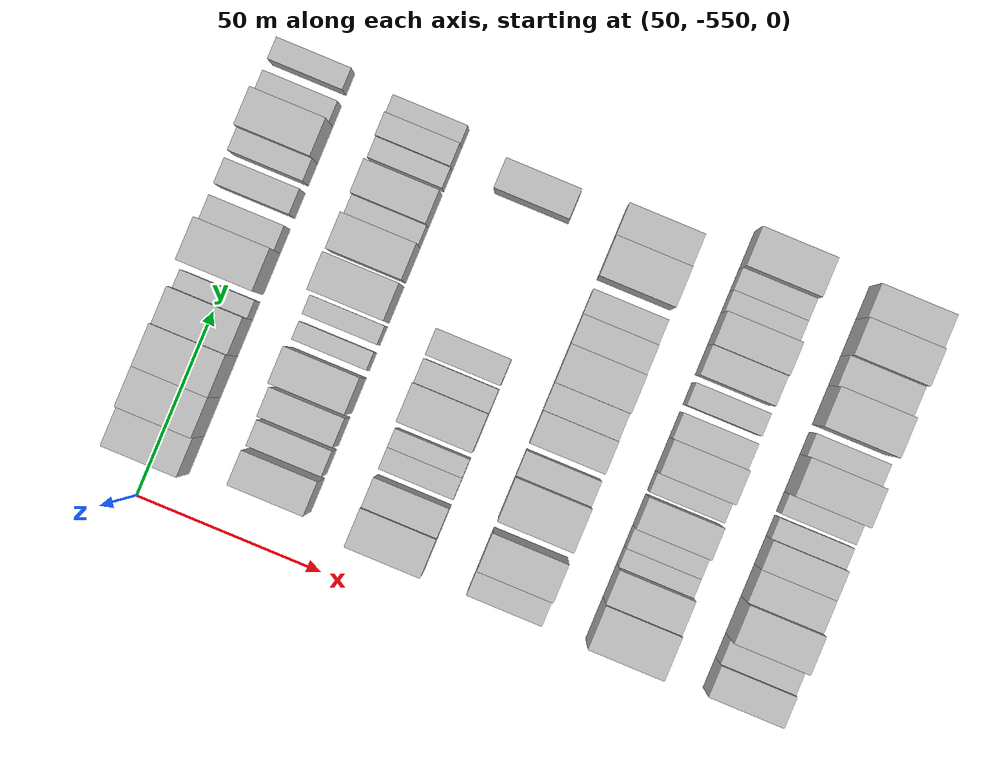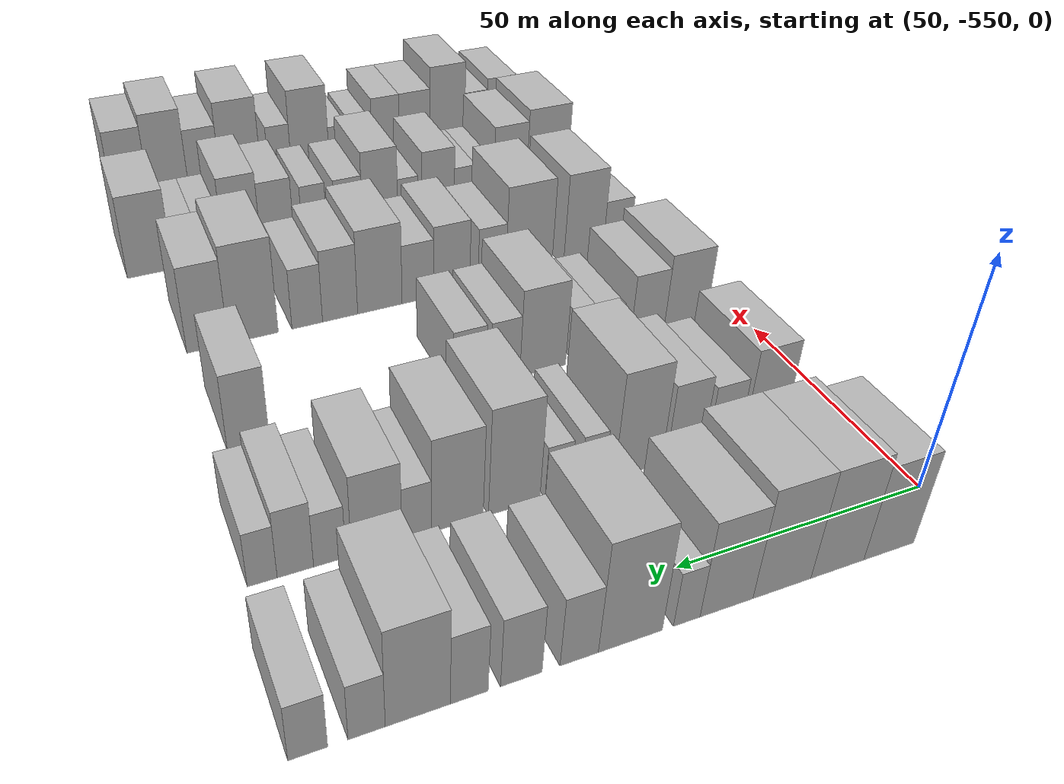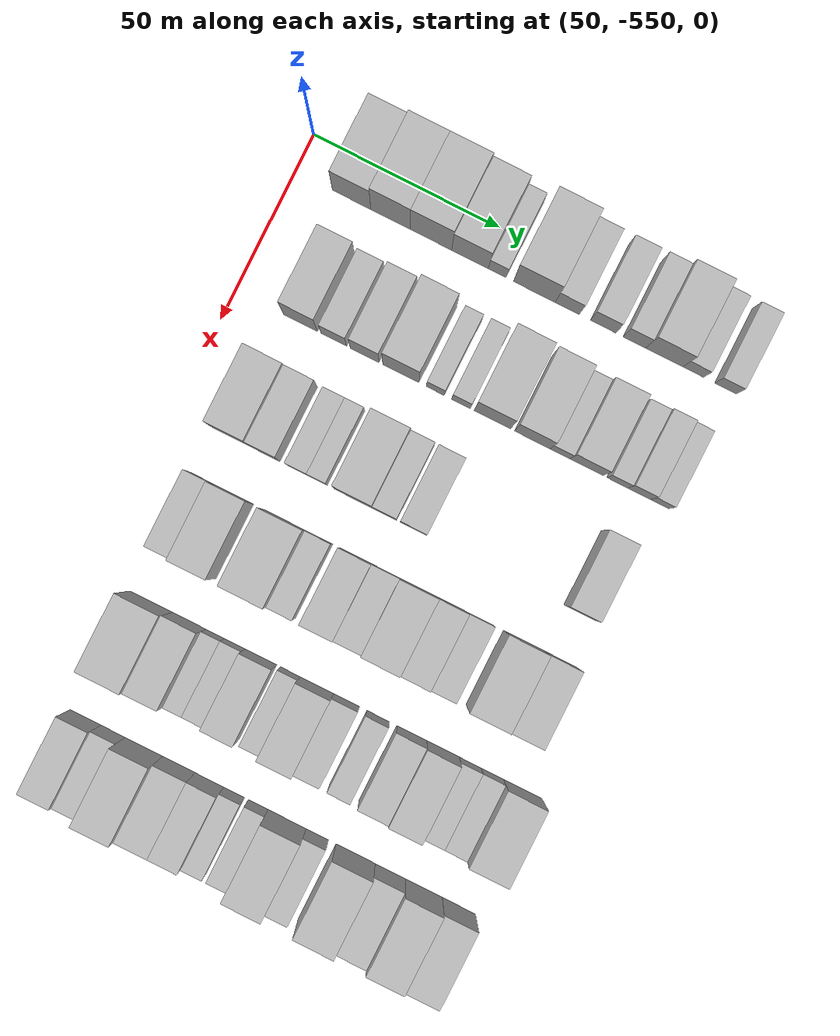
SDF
<sdf version="1.6">
 <world name="default">
  <model name="building_1">
   <static>1</static>
   <pose>50.0000 -534.8459 0 0.000000 0.000000 0.000000</pose>
   <link name="link">
    <pose>0 0 10.50 0 0 0</pose>
    <collision name="collision"><geometry><box><size>20.0000 10.3082 21.0000</size></box></geometry></collision>
    <visual name="visual">
     <cast_shadows>0</cast_shadows>
     <geometry><box><size>20.0000 10.3082 21.0000</size></box></geometry>
     <material>
      <script>
       <uri>model://HANNAS_wall/materials/scripts</uri>
       <uri>model://HANNAS_wall/materials/textures</uri>
       <name>vrc/HANNAS_wall</name>
      </script>
     </material>
    </visual>
   </link>
  </model>
  <model name="building_2">
   <static>1</static>
   <pose>50.0000 -524.3965 0 0.000000 0.000000 0.000000</pose>
   <link name="link">
    <pose>0 0 12.00 0 0 0</pose>
    <collision name="collision"><geometry><box><size>20.0000 10.5908 24.0000</size></box></geometry></collision>
    <visual name="visual">
     <cast_shadows>0</cast_shadows>
     <geometry><box><size>20.0000 10.5908 24.0000</size></box></geometry>
     <material>
      <script>
       <uri>model://HANNAS_wall/materials/scripts</uri>
       <uri>model://HANNAS_wall/materials/textures</uri>
       <name>vrc/HANNAS_wall</name>
      </script>
     </material>
    </visual>
   </link>
  </model>
  <model name="building_3">
   <static>1</static>
   <pose>50.0000 -513.5059 0 0.000000 0.000000 0.000000</pose>
   <link name="link">
    <pose>0 0 12.00 0 0 0</pose>
    <collision name="collision"><geometry><box><size>20.0000 11.1904 24.0000</size></box></geometry></collision>
    <visual name="visual">
     <cast_shadows>0</cast_shadows>
     <geometry><box><size>20.0000 11.1904 24.0000</size></box></geometry>
     <material>
      <script>
       <uri>model://HANNAS_wall/materials/scripts</uri>
       <uri>model://HANNAS_wall/materials/textures</uri>
       <name>vrc/HANNAS_wall</name>
      </script>
     </material>
    </visual>
   </link>
  </model>
  <model name="building_4">
   <static>1</static>
   <pose>50.0000 -502.9816 0 0.000000 0.000000 0.000000</pose>
   <link name="link">
    <pose>0 0 10.50 0 0 0</pose>
    <collision name="collision"><geometry><box><size>20.0000 9.8581 21.0000</size></box></geometry></collision>
    <visual name="visual">
     <cast_shadows>0</cast_shadows>
     <geometry><box><size>20.0000 9.8581 21.0000</size></box></geometry>
     <material>
      <script>
       <uri>model://HANNAS_wall/materials/scripts</uri>
       <uri>model://HANNAS_wall/materials/textures</uri>
       <name>vrc/HANNAS_wall</name>
      </script>
     </material>
    </visual>
   </link>
  </model>
  <model name="building_5">
   <static>1</static>
   <pose>50.0000 -495.6456 0 0.000000 0.000000 0.000000</pose>
   <link name="link">
    <pose>0 0 6.00 0 0 0</pose>
    <collision name="collision"><geometry><box><size>20.0000 4.8140 12.0000</size></box></geometry></collision>
    <visual name="visual">
     <cast_shadows>0</cast_shadows>
     <geometry><box><size>20.0000 4.8140 12.0000</size></box></geometry>
     <material>
      <script>
       <uri>model://HANNAS_wall/materials/scripts</uri>
       <uri>model://HANNAS_wall/materials/textures</uri>
       <name>vrc/HANNAS_wall</name>
      </script>
     </material>
    </visual>
   </link>
  </model>
  <model name="building_6">
   <static>1</static>
   <pose>50.0000 -485.6218 0 0.000000 0.000000 0.000000</pose>
   <link name="link">
    <pose>0 0 12.00 0 0 0</pose>
    <collision name="collision"><geometry><box><size>20.0000 11.2336 24.0000</size></box></geometry></collision>
    <visual name="visual">
     <cast_shadows>0</cast_shadows>
     <geometry><box><size>20.0000 11.2336 24.0000</size></box></geometry>
     <material>
      <script>
       <uri>model://HANNAS_wall/materials/scripts</uri>
       <uri>model://HANNAS_wall/materials/textures</uri>
       <name>vrc/HANNAS_wall</name>
      </script>
     </material>
    </visual>
   </link>
  </model>
  <model name="building_7">
   <static>1</static>
   <pose>50.0000 -476.7481 0 0.000000 0.000000 0.000000</pose>
   <link name="link">
    <pose>0 0 7.50 0 0 0</pose>
    <collision name="collision"><geometry><box><size>20.0000 6.5139 15.0000</size></box></geometry></collision>
    <visual name="visual">
     <cast_shadows>0</cast_shadows>
     <geometry><box><size>20.0000 6.5139 15.0000</size></box></geometry>
     <material>
      <script>
       <uri>model://HANNAS_wall/materials/scripts</uri>
       <uri>model://HANNAS_wall/materials/textures</uri>
       <name>vrc/HANNAS_wall</name>
      </script>
     </material>
    </visual>
   </link>
  </model>
  <model name="building_8">
   <static>1</static>
   <pose>50.0000 -467.0792 0 0.000000 0.000000 0.000000</pose>
   <link name="link">
    <pose>0 0 7.50 0 0 0</pose>
    <collision name="collision"><geometry><box><size>20.0000 6.8238 15.0000</size></box></geometry></collision>
    <visual name="visual">
     <cast_shadows>0</cast_shadows>
     <geometry><box><size>20.0000 6.8238 15.0000</size></box></geometry>
     <material>
      <script>
       <uri>model://HANNAS_wall/materials/scripts</uri>
       <uri>model://HANNAS_wall/materials/textures</uri>
       <name>vrc/HANNAS_wall</name>
      </script>
     </material>
    </visual>
   </link>
  </model>
  <model name="building_9">
   <static>1</static>
   <pose>50.0000 -458.6528 0 0.000000 0.000000 0.000000</pose>
   <link name="link">
    <pose>0 0 7.50 0 0 0</pose>
    <collision name="collision"><geometry><box><size>20.0000 6.0291 15.0000</size></box></geometry></collision>
    <visual name="visual">
     <cast_shadows>0</cast_shadows>
     <geometry><box><size>20.0000 6.0291 15.0000</size></box></geometry>
     <material>
      <script>
       <uri>model://HANNAS_wall/materials/scripts</uri>
       <uri>model://HANNAS_wall/materials/textures</uri>
       <name>vrc/HANNAS_wall</name>
      </script>
     </material>
    </visual>
   </link>
  </model>
  <model name="building_10">
   <static>1</static>
   <pose>50.0000 -450.6121 0 0.000000 0.000000 0.000000</pose>
   <link name="link">
    <pose>0 0 10.50 0 0 0</pose>
    <collision name="collision"><geometry><box><size>20.0000 10.0524 21.0000</size></box></geometry></collision>
    <visual name="visual">
     <cast_shadows>0</cast_shadows>
     <geometry><box><size>20.0000 10.0524 21.0000</size></box></geometry>
     <material>
      <script>
       <uri>model://HANNAS_wall/materials/scripts</uri>
       <uri>model://HANNAS_wall/materials/textures</uri>
       <name>vrc/HANNAS_wall</name>
      </script>
     </material>
    </visual>
   </link>
  </model>
  <model name="building_11">
   <static>1</static>
   <pose>50.0000 -442.7862 0 0.000000 0.000000 0.000000</pose>
   <link name="link">
    <pose>0 0 6.00 0 0 0</pose>
    <collision name="collision"><geometry><box><size>20.0000 5.5993 12.0000</size></box></geometry></collision>
    <visual name="visual">
     <cast_shadows>0</cast_shadows>
     <geometry><box><size>20.0000 5.5993 12.0000</size></box></geometry>
     <material>
      <script>
       <uri>model://HANNAS_wall/materials/scripts</uri>
       <uri>model://HANNAS_wall/materials/textures</uri>
       <name>vrc/HANNAS_wall</name>
      </script>
     </material>
    </visual>
   </link>
  </model>
  <model name="building_12">
   <static>1</static>
   <pose>50.0000 -434.0810 0 0.000000 0.000000 0.000000</pose>
   <link name="link">
    <pose>0 0 6.00 0 0 0</pose>
    <collision name="collision"><geometry><box><size>20.0000 5.8111 12.0000</size></box></geometry></collision>
    <visual name="visual">
     <cast_shadows>0</cast_shadows>
     <geometry><box><size>20.0000 5.8111 12.0000</size></box></geometry>
     <material>
      <script>
       <uri>model://HANNAS_wall/materials/scripts</uri>
       <uri>model://HANNAS_wall/materials/textures</uri>
       <name>vrc/HANNAS_wall</name>
      </script>
     </material>
    </visual>
   </link>
  </model>
  <model name="building_121">
   <static>1</static>
   <pose>82.0000 -532.4402 0 0.000000 0.000000 0.000000</pose>
   <link name="link">
    <pose>0 0 10.50 0 0 0</pose>
    <collision name="collision"><geometry><box><size>20.0000 9.1197 21.0000</size></box></geometry></collision>
    <visual name="visual">
     <cast_shadows>0</cast_shadows>
     <geometry><box><size>20.0000 9.1197 21.0000</size></box></geometry>
     <material>
      <script>
       <uri>model://HANNAS_wall/materials/scripts</uri>
       <uri>model://HANNAS_wall/materials/textures</uri>
       <name>vrc/HANNAS_wall</name>
      </script>
     </material>
    </visual>
   </link>
  </model>
  <model name="building_122">
   <static>1</static>
   <pose>82.0000 -523.4505 0 0.000000 0.000000 0.000000</pose>
   <link name="link">
    <pose>0 0 7.50 0 0 0</pose>
    <collision name="collision"><geometry><box><size>20.0000 6.8597 15.0000</size></box></geometry></collision>
    <visual name="visual">
     <cast_shadows>0</cast_shadows>
     <geometry><box><size>20.0000 6.8597 15.0000</size></box></geometry>
     <material>
      <script>
       <uri>model://HANNAS_wall/materials/scripts</uri>
       <uri>model://HANNAS_wall/materials/textures</uri>
       <name>vrc/HANNAS_wall</name>
      </script>
     </material>
    </visual>
   </link>
  </model>
  <model name="building_123">
   <static>1</static>
   <pose>82.0000 -515.1497 0 0.000000 0.000000 0.000000</pose>
   <link name="link">
    <pose>0 0 9.00 0 0 0</pose>
    <collision name="collision"><geometry><box><size>20.0000 7.7418 18.0000</size></box></geometry></collision>
    <visual name="visual">
     <cast_shadows>0</cast_shadows>
     <geometry><box><size>20.0000 7.7418 18.0000</size></box></geometry>
     <material>
      <script>
       <uri>model://HANNAS_wall/materials/scripts</uri>
       <uri>model://HANNAS_wall/materials/textures</uri>
       <name>vrc/HANNAS_wall</name>
      </script>
     </material>
    </visual>
   </link>
  </model>
  <model name="building_124">
   <static>1</static>
   <pose>82.0000 -505.4174 0 0.000000 0.000000 0.000000</pose>
   <link name="link">
    <pose>0 0 12.00 0 0 0</pose>
    <collision name="collision"><geometry><box><size>20.0000 9.7228 24.0000</size></box></geometry></collision>
    <visual name="visual">
     <cast_shadows>0</cast_shadows>
     <geometry><box><size>20.0000 9.7228 24.0000</size></box></geometry>
     <material>
      <script>
       <uri>model://HANNAS_wall/materials/scripts</uri>
       <uri>model://HANNAS_wall/materials/textures</uri>
       <name>vrc/HANNAS_wall</name>
      </script>
     </material>
    </visual>
   </link>
  </model>
  <model name="building_125">
   <static>1</static>
   <pose>82.0000 -496.1495 0 0.000000 0.000000 0.000000</pose>
   <link name="link">
    <pose>0 0 6.00 0 0 0</pose>
    <collision name="collision"><geometry><box><size>20.0000 4.8129 12.0000</size></box></geometry></collision>
    <visual name="visual">
     <cast_shadows>0</cast_shadows>
     <geometry><box><size>20.0000 4.8129 12.0000</size></box></geometry>
     <material>
      <script>
       <uri>model://HANNAS_wall/materials/scripts</uri>
       <uri>model://HANNAS_wall/materials/textures</uri>
       <name>vrc/HANNAS_wall</name>
      </script>
     </material>
    </visual>
   </link>
  </model>
  <model name="building_126">
   <static>1</static>
   <pose>82.0000 -489.2271 0 0.000000 0.000000 0.000000</pose>
   <link name="link">
    <pose>0 0 6.00 0 0 0</pose>
    <collision name="collision"><geometry><box><size>20.0000 5.0319 12.0000</size></box></geometry></collision>
    <visual name="visual">
     <cast_shadows>0</cast_shadows>
     <geometry><box><size>20.0000 5.0319 12.0000</size></box></geometry>
     <material>
      <script>
       <uri>model://HANNAS_wall/materials/scripts</uri>
       <uri>model://HANNAS_wall/materials/textures</uri>
       <name>vrc/HANNAS_wall</name>
      </script>
     </material>
    </visual>
   </link>
  </model>
  <model name="building_127">
   <static>1</static>
   <pose>82.0000 -480.7762 0 0.000000 0.000000 0.000000</pose>
   <link name="link">
    <pose>0 0 12.00 0 0 0</pose>
    <collision name="collision"><geometry><box><size>20.0000 9.8700 24.0000</size></box></geometry></collision>
    <visual name="visual">
     <cast_shadows>0</cast_shadows>
     <geometry><box><size>20.0000 9.8700 24.0000</size></box></geometry>
     <material>
      <script>
       <uri>model://HANNAS_wall/materials/scripts</uri>
       <uri>model://HANNAS_wall/materials/textures</uri>
       <name>vrc/HANNAS_wall</name>
      </script>
     </material>
    </visual>
   </link>
  </model>
  <model name="building_128">
   <static>1</static>
   <pose>82.0000 -470.0373 0 0.000000 0.000000 0.000000</pose>
   <link name="link">
    <pose>0 0 10.50 0 0 0</pose>
    <collision name="collision"><geometry><box><size>20.0000 9.6077 21.0000</size></box></geometry></collision>
    <visual name="visual">
     <cast_shadows>0</cast_shadows>
     <geometry><box><size>20.0000 9.6077 21.0000</size></box></geometry>
     <material>
      <script>
       <uri>model://HANNAS_wall/materials/scripts</uri>
       <uri>model://HANNAS_wall/materials/textures</uri>
       <name>vrc/HANNAS_wall</name>
      </script>
     </material>
    </visual>
   </link>
  </model>
  <model name="building_129">
   <static>1</static>
   <pose>82.0000 -462.5601 0 0.000000 0.000000 0.000000</pose>
   <link name="link">
    <pose>0 0 6.00 0 0 0</pose>
    <collision name="collision"><geometry><box><size>20.0000 5.3466 12.0000</size></box></geometry></collision>
    <visual name="visual">
     <cast_shadows>0</cast_shadows>
     <geometry><box><size>20.0000 5.3466 12.0000</size></box></geometry>
     <material>
      <script>
       <uri>model://HANNAS_wall/materials/scripts</uri>
       <uri>model://HANNAS_wall/materials/textures</uri>
       <name>vrc/HANNAS_wall</name>
      </script>
     </material>
    </visual>
   </link>
  </model>
  <model name="building_130">
   <static>1</static>
   <pose>82.0000 -455.4242 0 0.000000 0.000000 0.000000</pose>
   <link name="link">
    <pose>0 0 9.00 0 0 0</pose>
    <collision name="collision"><geometry><box><size>20.0000 8.9253 18.0000</size></box></geometry></collision>
    <visual name="visual">
     <cast_shadows>0</cast_shadows>
     <geometry><box><size>20.0000 8.9253 18.0000</size></box></geometry>
     <material>
      <script>
       <uri>model://HANNAS_wall/materials/scripts</uri>
       <uri>model://HANNAS_wall/materials/textures</uri>
       <name>vrc/HANNAS_wall</name>
      </script>
     </material>
    </visual>
   </link>
  </model>
  <model name="building_131">
   <static>1</static>
   <pose>82.0000 -447.1880 0 0.000000 0.000000 0.000000</pose>
   <link name="link">
    <pose>0 0 6.00 0 0 0</pose>
    <collision name="collision"><geometry><box><size>20.0000 5.5470 12.0000</size></box></geometry></collision>
    <visual name="visual">
     <cast_shadows>0</cast_shadows>
     <geometry><box><size>20.0000 5.5470 12.0000</size></box></geometry>
     <material>
      <script>
       <uri>model://HANNAS_wall/materials/scripts</uri>
       <uri>model://HANNAS_wall/materials/textures</uri>
       <name>vrc/HANNAS_wall</name>
      </script>
     </material>
    </visual>
   </link>
  </model>
  <model name="building_132">
   <static>1</static>
   <pose>82.0000 -441.3281 0 0.000000 0.000000 0.000000</pose>
   <link name="link">
    <pose>0 0 7.50 0 0 0</pose>
    <collision name="collision"><geometry><box><size>20.0000 6.1728 15.0000</size></box></geometry></collision>
    <visual name="visual">
     <cast_shadows>0</cast_shadows>
     <geometry><box><size>20.0000 6.1728 15.0000</size></box></geometry>
     <material>
      <script>
       <uri>model://HANNAS_wall/materials/scripts</uri>
       <uri>model://HANNAS_wall/materials/textures</uri>
       <name>vrc/HANNAS_wall</name>
      </script>
     </material>
    </visual>
   </link>
  </model>
  <model name="building_133">
   <static>1</static>
   <pose>82.0000 -435.7480 0 0.000000 0.000000 0.000000</pose>
   <link name="link">
    <pose>0 0 6.00 0 0 0</pose>
    <collision name="collision"><geometry><box><size>20.0000 4.9873 12.0000</size></box></geometry></collision>
    <visual name="visual">
     <cast_shadows>0</cast_shadows>
     <geometry><box><size>20.0000 4.9873 12.0000</size></box></geometry>
     <material>
      <script>
       <uri>model://HANNAS_wall/materials/scripts</uri>
       <uri>model://HANNAS_wall/materials/textures</uri>
       <name>vrc/HANNAS_wall</name>
      </script>
     </material>
    </visual>
   </link>
  </model>
  <model name="building_238">
   <static>1</static>
   <pose>114.0000 -534.8789 0 0.000000 0.000000 0.000000</pose>
   <link name="link">
    <pose>0 0 10.50 0 0 0</pose>
    <collision name="collision"><geometry><box><size>20.0000 10.2421 21.0000</size></box></geometry></collision>
    <visual name="visual">
     <cast_shadows>0</cast_shadows>
     <geometry><box><size>20.0000 10.2421 21.0000</size></box></geometry>
     <material>
      <script>
       <uri>model://HANNAS_wall/materials/scripts</uri>
       <uri>model://HANNAS_wall/materials/textures</uri>
       <name>vrc/HANNAS_wall</name>
      </script>
     </material>
    </visual>
   </link>
  </model>
  <model name="building_239">
   <static>1</static>
   <pose>114.0000 -525.7972 0 0.000000 0.000000 0.000000</pose>
   <link name="link">
    <pose>0 0 9.00 0 0 0</pose>
    <collision name="collision"><geometry><box><size>20.0000 7.9213 18.0000</size></box></geometry></collision>
    <visual name="visual">
     <cast_shadows>0</cast_shadows>
     <geometry><box><size>20.0000 7.9213 18.0000</size></box></geometry>
     <material>
      <script>
       <uri>model://HANNAS_wall/materials/scripts</uri>
       <uri>model://HANNAS_wall/materials/textures</uri>
       <name>vrc/HANNAS_wall</name>
      </script>
     </material>
    </visual>
   </link>
  </model>
  <model name="building_240">
   <static>1</static>
   <pose>114.0000 -516.9515 0 0.000000 0.000000 0.000000</pose>
   <link name="link">
    <pose>0 0 6.00 0 0 0</pose>
    <collision name="collision"><geometry><box><size>20.0000 5.7701 12.0000</size></box></geometry></collision>
    <visual name="visual">
     <cast_shadows>0</cast_shadows>
     <geometry><box><size>20.0000 5.7701 12.0000</size></box></geometry>
     <material>
      <script>
       <uri>model://HANNAS_wall/materials/scripts</uri>
       <uri>model://HANNAS_wall/materials/textures</uri>
       <name>vrc/HANNAS_wall</name>
      </script>
     </material>
    </visual>
   </link>
  </model>
  <model name="building_241">
   <static>1</static>
   <pose>114.0000 -511.5694 0 0.000000 0.000000 0.000000</pose>
   <link name="link">
    <pose>0 0 6.00 0 0 0</pose>
    <collision name="collision"><geometry><box><size>20.0000 4.9941 12.0000</size></box></geometry></collision>
    <visual name="visual">
     <cast_shadows>0</cast_shadows>
     <geometry><box><size>20.0000 4.9941 12.0000</size></box></geometry>
     <material>
      <script>
       <uri>model://HANNAS_wall/materials/scripts</uri>
       <uri>model://HANNAS_wall/materials/textures</uri>
       <name>vrc/HANNAS_wall</name>
      </script>
     </material>
    </visual>
   </link>
  </model>
  <model name="building_242">
   <static>1</static>
   <pose>114.0000 -501.9429 0 0.000000 0.000000 0.000000</pose>
   <link name="link">
    <pose>0 0 10.50 0 0 0</pose>
    <collision name="collision"><geometry><box><size>20.0000 10.2590 21.0000</size></box></geometry></collision>
    <visual name="visual">
     <cast_shadows>0</cast_shadows>
     <geometry><box><size>20.0000 10.2590 21.0000</size></box></geometry>
     <material>
      <script>
       <uri>model://HANNAS_wall/materials/scripts</uri>
       <uri>model://HANNAS_wall/materials/textures</uri>
       <name>vrc/HANNAS_wall</name>
      </script>
     </material>
    </visual>
   </link>
  </model>
  <model name="building_243">
   <static>1</static>
   <pose>114.0000 -493.6064 0 0.000000 0.000000 0.000000</pose>
   <link name="link">
    <pose>0 0 7.50 0 0 0</pose>
    <collision name="collision"><geometry><box><size>20.0000 6.4140 15.0000</size></box></geometry></collision>
    <visual name="visual">
     <cast_shadows>0</cast_shadows>
     <geometry><box><size>20.0000 6.4140 15.0000</size></box></geometry>
     <material>
      <script>
       <uri>model://HANNAS_wall/materials/scripts</uri>
       <uri>model://HANNAS_wall/materials/textures</uri>
       <name>vrc/HANNAS_wall</name>
      </script>
     </material>
    </visual>
   </link>
  </model>
  <model name="building_244">
   <static>1</static>
   <pose>114.0000 -485.8817 0 0.000000 0.000000 0.000000</pose>
   <link name="link">
    <pose>0 0 7.50 0 0 0</pose>
    <collision name="collision"><geometry><box><size>20.0000 7.0355 15.0000</size></box></geometry></collision>
    <visual name="visual">
     <cast_shadows>0</cast_shadows>
     <geometry><box><size>20.0000 7.0355 15.0000</size></box></geometry>
     <material>
      <script>
       <uri>model://HANNAS_wall/materials/scripts</uri>
       <uri>model://HANNAS_wall/materials/textures</uri>
       <name>vrc/HANNAS_wall</name>
      </script>
     </material>
    </visual>
   </link>
  </model>
  <model name="building_245">
   <static>1</static>
   <pose>114.0000 -441.3834 0 0.000000 0.000000 0.000000</pose>
   <link name="link">
    <pose>0 0 9.00 0 0 0</pose>
    <collision name="collision"><geometry><box><size>20.0000 7.9870 18.0000</size></box></geometry></collision>
    <visual name="visual">
     <cast_shadows>0</cast_shadows>
     <geometry><box><size>20.0000 7.9870 18.0000</size></box></geometry>
     <material>
      <script>
       <uri>model://HANNAS_wall/materials/scripts</uri>
       <uri>model://HANNAS_wall/materials/textures</uri>
       <name>vrc/HANNAS_wall</name>
      </script>
     </material>
    </visual>
   </link>
  </model>
  <model name="building_356">
   <static>1</static>
   <pose>146.0000 -536.4405 0 0.000000 0.000000 0.000000</pose>
   <link name="link">
    <pose>0 0 7.50 0 0 0</pose>
    <collision name="collision"><geometry><box><size>20.0000 7.1191 15.0000</size></box></geometry></collision>
    <visual name="visual">
     <cast_shadows>0</cast_shadows>
     <geometry><box><size>20.0000 7.1191 15.0000</size></box></geometry>
     <material>
      <script>
       <uri>model://HANNAS_wall/materials/scripts</uri>
       <uri>model://HANNAS_wall/materials/textures</uri>
       <name>vrc/HANNAS_wall</name>
      </script>
     </material>
    </visual>
   </link>
  </model>
  <model name="building_357">
   <static>1</static>
   <pose>146.0000 -527.8668 0 0.000000 0.000000 0.000000</pose>
   <link name="link">
    <pose>0 0 12.00 0 0 0</pose>
    <collision name="collision"><geometry><box><size>20.0000 10.0282 24.0000</size></box></geometry></collision>
    <visual name="visual">
     <cast_shadows>0</cast_shadows>
     <geometry><box><size>20.0000 10.0282 24.0000</size></box></geometry>
     <material>
      <script>
       <uri>model://HANNAS_wall/materials/scripts</uri>
       <uri>model://HANNAS_wall/materials/textures</uri>
       <name>vrc/HANNAS_wall</name>
      </script>
     </material>
    </visual>
   </link>
  </model>
  <model name="building_358">
   <static>1</static>
   <pose>146.0000 -514.0652 0 0.000000 0.000000 0.000000</pose>
   <link name="link">
    <pose>0 0 12.00 0 0 0</pose>
    <collision name="collision"><geometry><box><size>20.0000 11.5750 24.0000</size></box></geometry></collision>
    <visual name="visual">
     <cast_shadows>0</cast_shadows>
     <geometry><box><size>20.0000 11.5750 24.0000</size></box></geometry>
     <material>
      <script>
       <uri>model://HANNAS_wall/materials/scripts</uri>
       <uri>model://HANNAS_wall/materials/textures</uri>
       <name>vrc/HANNAS_wall</name>
      </script>
     </material>
    </visual>
   </link>
  </model>
  <model name="building_359">
   <static>1</static>
   <pose>146.0000 -504.9033 0 0.000000 0.000000 0.000000</pose>
   <link name="link">
    <pose>0 0 7.50 0 0 0</pose>
    <collision name="collision"><geometry><box><size>20.0000 6.7487 15.0000</size></box></geometry></collision>
    <visual name="visual">
     <cast_shadows>0</cast_shadows>
     <geometry><box><size>20.0000 6.7487 15.0000</size></box></geometry>
     <material>
      <script>
       <uri>model://HANNAS_wall/materials/scripts</uri>
       <uri>model://HANNAS_wall/materials/textures</uri>
       <name>vrc/HANNAS_wall</name>
      </script>
     </material>
    </visual>
   </link>
  </model>
  <model name="building_360">
   <static>1</static>
   <pose>146.0000 -495.1917 0 0.000000 0.000000 0.000000</pose>
   <link name="link">
    <pose>0 0 9.00 0 0 0</pose>
    <collision name="collision"><geometry><box><size>20.0000 8.6746 18.0000</size></box></geometry></collision>
    <visual name="visual">
     <cast_shadows>0</cast_shadows>
     <geometry><box><size>20.0000 8.6746 18.0000</size></box></geometry>
     <material>
      <script>
       <uri>model://HANNAS_wall/materials/scripts</uri>
       <uri>model://HANNAS_wall/materials/textures</uri>
       <name>vrc/HANNAS_wall</name>
      </script>
     </material>
    </visual>
   </link>
  </model>
  <model name="building_361">
   <static>1</static>
   <pose>146.0000 -487.1616 0 0.000000 0.000000 0.000000</pose>
   <link name="link">
    <pose>0 0 7.50 0 0 0</pose>
    <collision name="collision"><geometry><box><size>20.0000 7.3855 15.0000</size></box></geometry></collision>
    <visual name="visual">
     <cast_shadows>0</cast_shadows>
     <geometry><box><size>20.0000 7.3855 15.0000</size></box></geometry>
     <material>
      <script>
       <uri>model://HANNAS_wall/materials/scripts</uri>
       <uri>model://HANNAS_wall/materials/textures</uri>
       <name>vrc/HANNAS_wall</name>
      </script>
     </material>
    </visual>
   </link>
  </model>
  <model name="building_362">
   <static>1</static>
   <pose>146.0000 -478.3599 0 0.000000 0.000000 0.000000</pose>
   <link name="link">
    <pose>0 0 10.50 0 0 0</pose>
    <collision name="collision"><geometry><box><size>20.0000 10.2180 21.0000</size></box></geometry></collision>
    <visual name="visual">
     <cast_shadows>0</cast_shadows>
     <geometry><box><size>20.0000 10.2180 21.0000</size></box></geometry>
     <material>
      <script>
       <uri>model://HANNAS_wall/materials/scripts</uri>
       <uri>model://HANNAS_wall/materials/textures</uri>
       <name>vrc/HANNAS_wall</name>
      </script>
     </material>
    </visual>
   </link>
  </model>
  <model name="building_363">
   <static>1</static>
   <pose>146.0000 -469.2986 0 0.000000 0.000000 0.000000</pose>
   <link name="link">
    <pose>0 0 9.00 0 0 0</pose>
    <collision name="collision"><geometry><box><size>20.0000 7.9045 18.0000</size></box></geometry></collision>
    <visual name="visual">
     <cast_shadows>0</cast_shadows>
     <geometry><box><size>20.0000 7.9045 18.0000</size></box></geometry>
     <material>
      <script>
       <uri>model://HANNAS_wall/materials/scripts</uri>
       <uri>model://HANNAS_wall/materials/textures</uri>
       <name>vrc/HANNAS_wall</name>
      </script>
     </material>
    </visual>
   </link>
  </model>
  <model name="building_364">
   <static>1</static>
   <pose>146.0000 -461.9728 0 0.000000 0.000000 0.000000</pose>
   <link name="link">
    <pose>0 0 7.50 0 0 0</pose>
    <collision name="collision"><geometry><box><size>20.0000 6.7471 15.0000</size></box></geometry></collision>
    <visual name="visual">
     <cast_shadows>0</cast_shadows>
     <geometry><box><size>20.0000 6.7471 15.0000</size></box></geometry>
     <material>
      <script>
       <uri>model://HANNAS_wall/materials/scripts</uri>
       <uri>model://HANNAS_wall/materials/textures</uri>
       <name>vrc/HANNAS_wall</name>
      </script>
     </material>
    </visual>
   </link>
  </model>
  <model name="building_365">
   <static>1</static>
   <pose>146.0000 -450.2585 0 0.000000 0.000000 0.000000</pose>
   <link name="link">
    <pose>0 0 12.00 0 0 0</pose>
    <collision name="collision"><geometry><box><size>20.0000 10.6816 24.0000</size></box></geometry></collision>
    <visual name="visual">
     <cast_shadows>0</cast_shadows>
     <geometry><box><size>20.0000 10.6816 24.0000</size></box></geometry>
     <material>
      <script>
       <uri>model://HANNAS_wall/materials/scripts</uri>
       <uri>model://HANNAS_wall/materials/textures</uri>
       <name>vrc/HANNAS_wall</name>
      </script>
     </material>
    </visual>
   </link>
  </model>
  <model name="building_366">
   <static>1</static>
   <pose>146.0000 -440.5759 0 0.000000 0.000000 0.000000</pose>
   <link name="link">
    <pose>0 0 10.50 0 0 0</pose>
    <collision name="collision"><geometry><box><size>20.0000 8.6835 21.0000</size></box></geometry></collision>
    <visual name="visual">
     <cast_shadows>0</cast_shadows>
     <geometry><box><size>20.0000 8.6835 21.0000</size></box></geometry>
     <material>
      <script>
       <uri>model://HANNAS_wall/materials/scripts</uri>
       <uri>model://HANNAS_wall/materials/textures</uri>
       <name>vrc/HANNAS_wall</name>
      </script>
     </material>
    </visual>
   </link>
  </model>
  <model name="building_474">
   <static>1</static>
   <pose>178.0000 -534.2636 0 0.000000 0.000000 0.000000</pose>
   <link name="link">
    <pose>0 0 12.00 0 0 0</pose>
    <collision name="collision"><geometry><box><size>20.0000 11.4728 24.0000</size></box></geometry></collision>
    <visual name="visual">
     <cast_shadows>0</cast_shadows>
     <geometry><box><size>20.0000 11.4728 24.0000</size></box></geometry>
     <material>
      <script>
       <uri>model://HANNAS_wall/materials/scripts</uri>
       <uri>model://HANNAS_wall/materials/textures</uri>
       <name>vrc/HANNAS_wall</name>
      </script>
     </material>
    </visual>
   </link>
  </model>
  <model name="building_475">
   <static>1</static>
   <pose>178.0000 -524.0127 0 0.000000 0.000000 0.000000</pose>
   <link name="link">
    <pose>0 0 10.50 0 0 0</pose>
    <collision name="collision"><geometry><box><size>20.0000 9.0291 21.0000</size></box></geometry></collision>
    <visual name="visual">
     <cast_shadows>0</cast_shadows>
     <geometry><box><size>20.0000 9.0291 21.0000</size></box></geometry>
     <material>
      <script>
       <uri>model://HANNAS_wall/materials/scripts</uri>
       <uri>model://HANNAS_wall/materials/textures</uri>
       <name>vrc/HANNAS_wall</name>
      </script>
     </material>
    </visual>
   </link>
  </model>
  <model name="building_476">
   <static>1</static>
   <pose>178.0000 -517.0051 0 0.000000 0.000000 0.000000</pose>
   <link name="link">
    <pose>0 0 6.00 0 0 0</pose>
    <collision name="collision"><geometry><box><size>20.0000 4.9860 12.0000</size></box></geometry></collision>
    <visual name="visual">
     <cast_shadows>0</cast_shadows>
     <geometry><box><size>20.0000 4.9860 12.0000</size></box></geometry>
     <material>
      <script>
       <uri>model://HANNAS_wall/materials/scripts</uri>
       <uri>model://HANNAS_wall/materials/textures</uri>
       <name>vrc/HANNAS_wall</name>
      </script>
     </material>
    </visual>
   </link>
  </model>
  <model name="building_477">
   <static>1</static>
   <pose>178.0000 -511.7374 0 0.000000 0.000000 0.000000</pose>
   <link name="link">
    <pose>0 0 6.00 0 0 0</pose>
    <collision name="collision"><geometry><box><size>20.0000 5.5493 12.0000</size></box></geometry></collision>
    <visual name="visual">
     <cast_shadows>0</cast_shadows>
     <geometry><box><size>20.0000 5.5493 12.0000</size></box></geometry>
     <material>
      <script>
       <uri>model://HANNAS_wall/materials/scripts</uri>
       <uri>model://HANNAS_wall/materials/textures</uri>
       <name>vrc/HANNAS_wall</name>
      </script>
     </material>
    </visual>
   </link>
  </model>
  <model name="building_478">
   <static>1</static>
   <pose>178.0000 -504.7221 0 0.000000 0.000000 0.000000</pose>
   <link name="link">
    <pose>0 0 9.00 0 0 0</pose>
    <collision name="collision"><geometry><box><size>20.0000 8.4813 18.0000</size></box></geometry></collision>
    <visual name="visual">
     <cast_shadows>0</cast_shadows>
     <geometry><box><size>20.0000 8.4813 18.0000</size></box></geometry>
     <material>
      <script>
       <uri>model://HANNAS_wall/materials/scripts</uri>
       <uri>model://HANNAS_wall/materials/textures</uri>
       <name>vrc/HANNAS_wall</name>
      </script>
     </material>
    </visual>
   </link>
  </model>
  <model name="building_479">
   <static>1</static>
   <pose>178.0000 -496.8253 0 0.000000 0.000000 0.000000</pose>
   <link name="link">
    <pose>0 0 6.00 0 0 0</pose>
    <collision name="collision"><geometry><box><size>20.0000 5.3122 12.0000</size></box></geometry></collision>
    <visual name="visual">
     <cast_shadows>0</cast_shadows>
     <geometry><box><size>20.0000 5.3122 12.0000</size></box></geometry>
     <material>
      <script>
       <uri>model://HANNAS_wall/materials/scripts</uri>
       <uri>model://HANNAS_wall/materials/textures</uri>
       <name>vrc/HANNAS_wall</name>
      </script>
     </material>
    </visual>
   </link>
  </model>
  <model name="building_480">
   <static>1</static>
   <pose>178.0000 -489.6529 0 0.000000 0.000000 0.000000</pose>
   <link name="link">
    <pose>0 0 10.50 0 0 0</pose>
    <collision name="collision"><geometry><box><size>20.0000 9.0327 21.0000</size></box></geometry></collision>
    <visual name="visual">
     <cast_shadows>0</cast_shadows>
     <geometry><box><size>20.0000 9.0327 21.0000</size></box></geometry>
     <material>
      <script>
       <uri>model://HANNAS_wall/materials/scripts</uri>
       <uri>model://HANNAS_wall/materials/textures</uri>
       <name>vrc/HANNAS_wall</name>
      </script>
     </material>
    </visual>
   </link>
  </model>
  <model name="building_481">
   <static>1</static>
   <pose>178.0000 -481.6778 0 0.000000 0.000000 0.000000</pose>
   <link name="link">
    <pose>0 0 7.50 0 0 0</pose>
    <collision name="collision"><geometry><box><size>20.0000 6.9175 15.0000</size></box></geometry></collision>
    <visual name="visual">
     <cast_shadows>0</cast_shadows>
     <geometry><box><size>20.0000 6.9175 15.0000</size></box></geometry>
     <material>
      <script>
       <uri>model://HANNAS_wall/materials/scripts</uri>
       <uri>model://HANNAS_wall/materials/textures</uri>
       <name>vrc/HANNAS_wall</name>
      </script>
     </material>
    </visual>
   </link>
  </model>
  <model name="building_482">
   <static>1</static>
   <pose>178.0000 -473.2075 0 0.000000 0.000000 0.000000</pose>
   <link name="link">
    <pose>0 0 7.50 0 0 0</pose>
    <collision name="collision"><geometry><box><size>20.0000 6.0232 15.0000</size></box></geometry></collision>
    <visual name="visual">
     <cast_shadows>0</cast_shadows>
     <geometry><box><size>20.0000 6.0232 15.0000</size></box></geometry>
     <material>
      <script>
       <uri>model://HANNAS_wall/materials/scripts</uri>
       <uri>model://HANNAS_wall/materials/textures</uri>
       <name>vrc/HANNAS_wall</name>
      </script>
     </material>
    </visual>
   </link>
  </model>
  <model name="building_483">
   <static>1</static>
   <pose>178.0000 -464.1811 0 0.000000 0.000000 0.000000</pose>
   <link name="link">
    <pose>0 0 9.00 0 0 0</pose>
    <collision name="collision"><geometry><box><size>20.0000 8.0295 18.0000</size></box></geometry></collision>
    <visual name="visual">
     <cast_shadows>0</cast_shadows>
     <geometry><box><size>20.0000 8.0295 18.0000</size></box></geometry>
     <material>
      <script>
       <uri>model://HANNAS_wall/materials/scripts</uri>
       <uri>model://HANNAS_wall/materials/textures</uri>
       <name>vrc/HANNAS_wall</name>
      </script>
     </material>
    </visual>
   </link>
  </model>
  <model name="building_484">
   <static>1</static>
   <pose>178.0000 -455.7803 0 0.000000 0.000000 0.000000</pose>
   <link name="link">
    <pose>0 0 10.50 0 0 0</pose>
    <collision name="collision"><geometry><box><size>20.0000 8.7723 21.0000</size></box></geometry></collision>
    <visual name="visual">
     <cast_shadows>0</cast_shadows>
     <geometry><box><size>20.0000 8.7723 21.0000</size></box></geometry>
     <material>
      <script>
       <uri>model://HANNAS_wall/materials/scripts</uri>
       <uri>model://HANNAS_wall/materials/textures</uri>
       <name>vrc/HANNAS_wall</name>
      </script>
     </material>
    </visual>
   </link>
  </model>
  <model name="building_485">
   <static>1</static>
   <pose>178.0000 -448.4277 0 0.000000 0.000000 0.000000</pose>
   <link name="link">
    <pose>0 0 6.00 0 0 0</pose>
    <collision name="collision"><geometry><box><size>20.0000 5.9328 12.0000</size></box></geometry></collision>
    <visual name="visual">
     <cast_shadows>0</cast_shadows>
     <geometry><box><size>20.0000 5.9328 12.0000</size></box></geometry>
     <material>
      <script>
       <uri>model://HANNAS_wall/materials/scripts</uri>
       <uri>model://HANNAS_wall/materials/textures</uri>
       <name>vrc/HANNAS_wall</name>
      </script>
     </material>
    </visual>
   </link>
  </model>
  <model name="building_486">
   <static>1</static>
   <pose>178.0000 -442.4833 0 0.000000 0.000000 0.000000</pose>
   <link name="link">
    <pose>0 0 6.00 0 0 0</pose>
    <collision name="collision"><geometry><box><size>20.0000 5.9560 12.0000</size></box></geometry></collision>
    <visual name="visual">
     <cast_shadows>0</cast_shadows>
     <geometry><box><size>20.0000 5.9560 12.0000</size></box></geometry>
     <material>
      <script>
       <uri>model://HANNAS_wall/materials/scripts</uri>
       <uri>model://HANNAS_wall/materials/textures</uri>
       <name>vrc/HANNAS_wall</name>
      </script>
     </material>
    </visual>
   </link>
  </model>
  <model name="building_487">
   <static>1</static>
   <pose>178.0000 -434.3187 0 0.000000 0.000000 0.000000</pose>
   <link name="link">
    <pose>0 0 10.50 0 0 0</pose>
    <collision name="collision"><geometry><box><size>20.0000 10.3732 21.0000</size></box></geometry></collision>
    <visual name="visual">
     <cast_shadows>0</cast_shadows>
     <geometry><box><size>20.0000 10.3732 21.0000</size></box></geometry>
     <material>
      <script>
       <uri>model://HANNAS_wall/materials/scripts</uri>
       <uri>model://HANNAS_wall/materials/textures</uri>
       <name>vrc/HANNAS_wall</name>
      </script>
     </material>
    </visual>
   </link>
  </model>
  <model name="building_599">
   <static>1</static>
   <pose>210.0000 -535.8592 0 0.000000 0.000000 0.000000</pose>
   <link name="link">
    <pose>0 0 9.00 0 0 0</pose>
    <collision name="collision"><geometry><box><size>20.0000 8.2816 18.0000</size></box></geometry></collision>
    <visual name="visual">
     <cast_shadows>0</cast_shadows>
     <geometry><box><size>20.0000 8.2816 18.0000</size></box></geometry>
     <material>
      <script>
       <uri>model://HANNAS_wall/materials/scripts</uri>
       <uri>model://HANNAS_wall/materials/textures</uri>
       <name>vrc/HANNAS_wall</name>
      </script>
     </material>
    </visual>
   </link>
  </model>
  <model name="building_600">
   <static>1</static>
   <pose>210.0000 -528.4399 0 0.000000 0.000000 0.000000</pose>
   <link name="link">
    <pose>0 0 7.50 0 0 0</pose>
    <collision name="collision"><geometry><box><size>20.0000 6.5571 15.0000</size></box></geometry></collision>
    <visual name="visual">
     <cast_shadows>0</cast_shadows>
     <geometry><box><size>20.0000 6.5571 15.0000</size></box></geometry>
     <material>
      <script>
       <uri>model://HANNAS_wall/materials/scripts</uri>
       <uri>model://HANNAS_wall/materials/textures</uri>
       <name>vrc/HANNAS_wall</name>
      </script>
     </material>
    </visual>
   </link>
  </model>
  <model name="building_601">
   <static>1</static>
   <pose>210.0000 -520.1215 0 0.000000 0.000000 0.000000</pose>
   <link name="link">
    <pose>0 0 12.00 0 0 0</pose>
    <collision name="collision"><geometry><box><size>20.0000 10.0796 24.0000</size></box></geometry></collision>
    <visual name="visual">
     <cast_shadows>0</cast_shadows>
     <geometry><box><size>20.0000 10.0796 24.0000</size></box></geometry>
     <material>
      <script>
       <uri>model://HANNAS_wall/materials/scripts</uri>
       <uri>model://HANNAS_wall/materials/textures</uri>
       <name>vrc/HANNAS_wall</name>
      </script>
     </material>
    </visual>
   </link>
  </model>
  <model name="building_602">
   <static>1</static>
   <pose>210.0000 -510.7178 0 0.000000 0.000000 0.000000</pose>
   <link name="link">
    <pose>0 0 9.00 0 0 0</pose>
    <collision name="collision"><geometry><box><size>20.0000 8.7279 18.0000</size></box></geometry></collision>
    <visual name="visual">
     <cast_shadows>0</cast_shadows>
     <geometry><box><size>20.0000 8.7279 18.0000</size></box></geometry>
     <material>
      <script>
       <uri>model://HANNAS_wall/materials/scripts</uri>
       <uri>model://HANNAS_wall/materials/textures</uri>
       <name>vrc/HANNAS_wall</name>
      </script>
     </material>
    </visual>
   </link>
  </model>
  <model name="building_603">
   <static>1</static>
   <pose>210.0000 -502.4798 0 0.000000 0.000000 0.000000</pose>
   <link name="link">
    <pose>0 0 9.00 0 0 0</pose>
    <collision name="collision"><geometry><box><size>20.0000 7.7481 18.0000</size></box></geometry></collision>
    <visual name="visual">
     <cast_shadows>0</cast_shadows>
     <geometry><box><size>20.0000 7.7481 18.0000</size></box></geometry>
     <material>
      <script>
       <uri>model://HANNAS_wall/materials/scripts</uri>
       <uri>model://HANNAS_wall/materials/textures</uri>
       <name>vrc/HANNAS_wall</name>
      </script>
     </material>
    </visual>
   </link>
  </model>
  <model name="building_604">
   <static>1</static>
   <pose>210.0000 -495.8030 0 0.000000 0.000000 0.000000</pose>
   <link name="link">
    <pose>0 0 6.00 0 0 0</pose>
    <collision name="collision"><geometry><box><size>20.0000 5.6054 12.0000</size></box></geometry></collision>
    <visual name="visual">
     <cast_shadows>0</cast_shadows>
     <geometry><box><size>20.0000 5.6054 12.0000</size></box></geometry>
     <material>
      <script>
       <uri>model://HANNAS_wall/materials/scripts</uri>
       <uri>model://HANNAS_wall/materials/textures</uri>
       <name>vrc/HANNAS_wall</name>
      </script>
     </material>
    </visual>
   </link>
  </model>
  <model name="building_605">
   <static>1</static>
   <pose>210.0000 -489.3531 0 0.000000 0.000000 0.000000</pose>
   <link name="link">
    <pose>0 0 6.00 0 0 0</pose>
    <collision name="collision"><geometry><box><size>20.0000 5.2945 12.0000</size></box></geometry></collision>
    <visual name="visual">
     <cast_shadows>0</cast_shadows>
     <geometry><box><size>20.0000 5.2945 12.0000</size></box></geometry>
     <material>
      <script>
       <uri>model://HANNAS_wall/materials/scripts</uri>
       <uri>model://HANNAS_wall/materials/textures</uri>
       <name>vrc/HANNAS_wall</name>
      </script>
     </material>
    </visual>
   </link>
  </model>
  <model name="building_606">
   <static>1</static>
   <pose>210.0000 -481.5883 0 0.000000 0.000000 0.000000</pose>
   <link name="link">
    <pose>0 0 12.00 0 0 0</pose>
    <collision name="collision"><geometry><box><size>20.0000 10.2351 24.0000</size></box></geometry></collision>
    <visual name="visual">
     <cast_shadows>0</cast_shadows>
     <geometry><box><size>20.0000 10.2351 24.0000</size></box></geometry>
     <material>
      <script>
       <uri>model://HANNAS_wall/materials/scripts</uri>
       <uri>model://HANNAS_wall/materials/textures</uri>
       <name>vrc/HANNAS_wall</name>
      </script>
     </material>
    </visual>
   </link>
  </model>
  <model name="building_607">
   <static>1</static>
   <pose>210.0000 -473.4476 0 0.000000 0.000000 0.000000</pose>
   <link name="link">
    <pose>0 0 7.50 0 0 0</pose>
    <collision name="collision"><geometry><box><size>20.0000 6.0463 15.0000</size></box></geometry></collision>
    <visual name="visual">
     <cast_shadows>0</cast_shadows>
     <geometry><box><size>20.0000 6.0463 15.0000</size></box></geometry>
     <material>
      <script>
       <uri>model://HANNAS_wall/materials/scripts</uri>
       <uri>model://HANNAS_wall/materials/textures</uri>
       <name>vrc/HANNAS_wall</name>
      </script>
     </material>
    </visual>
   </link>
  </model>
  <model name="building_608">
   <static>1</static>
   <pose>210.0000 -463.1477 0 0.000000 0.000000 0.000000</pose>
   <link name="link">
    <pose>0 0 12.00 0 0 0</pose>
    <collision name="collision"><geometry><box><size>20.0000 10.5536 24.0000</size></box></geometry></collision>
    <visual name="visual">
     <cast_shadows>0</cast_shadows>
     <geometry><box><size>20.0000 10.5536 24.0000</size></box></geometry>
     <material>
      <script>
       <uri>model://HANNAS_wall/materials/scripts</uri>
       <uri>model://HANNAS_wall/materials/textures</uri>
       <name>vrc/HANNAS_wall</name>
      </script>
     </material>
    </visual>
   </link>
  </model>
  <model name="building_609">
   <static>1</static>
   <pose>210.0000 -453.7969 0 0.000000 0.000000 0.000000</pose>
   <link name="link">
    <pose>0 0 9.00 0 0 0</pose>
    <collision name="collision"><geometry><box><size>20.0000 8.1480 18.0000</size></box></geometry></collision>
    <visual name="visual">
     <cast_shadows>0</cast_shadows>
     <geometry><box><size>20.0000 8.1480 18.0000</size></box></geometry>
     <material>
      <script>
       <uri>model://HANNAS_wall/materials/scripts</uri>
       <uri>model://HANNAS_wall/materials/textures</uri>
       <name>vrc/HANNAS_wall</name>
      </script>
     </material>
    </visual>
   </link>
  </model>
  <model name="building_610">
   <static>1</static>
   <pose>210.0000 -444.7705 0 0.000000 0.000000 0.000000</pose>
   <link name="link">
    <pose>0 0 12.00 0 0 0</pose>
    <collision name="collision"><geometry><box><size>20.0000 9.9049 24.0000</size></box></geometry></collision>
    <visual name="visual">
     <cast_shadows>0</cast_shadows>
     <geometry><box><size>20.0000 9.9049 24.0000</size></box></geometry>
     <material>
      <script>
       <uri>model://HANNAS_wall/materials/scripts</uri>
       <uri>model://HANNAS_wall/materials/textures</uri>
       <name>vrc/HANNAS_wall</name>
      </script>
     </material>
    </visual>
   </link>
  </model>
  <model name="building_611">
   <static>1</static>
   <pose>210.0000 -435.3367 0 0.000000 0.000000 0.000000</pose>
   <link name="link">
    <pose>0 0 10.50 0 0 0</pose>
    <collision name="collision"><geometry><box><size>20.0000 8.9627 21.0000</size></box></geometry></collision>
    <visual name="visual">
     <cast_shadows>0</cast_shadows>
     <geometry><box><size>20.0000 8.9627 21.0000</size></box></geometry>
     <material>
      <script>
       <uri>model://HANNAS_wall/materials/scripts</uri>
       <uri>model://HANNAS_wall/materials/textures</uri>
       <name>vrc/HANNAS_wall</name>
      </script>
     </material>
    </visual>
   </link>
  </model>
 </world>
</sdf>
